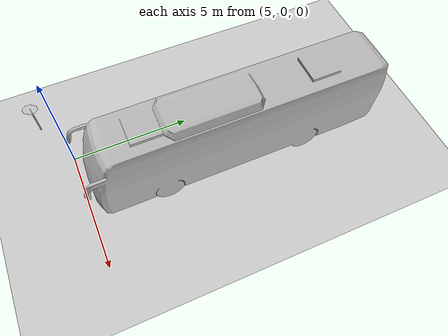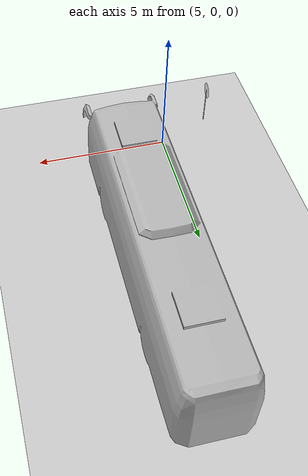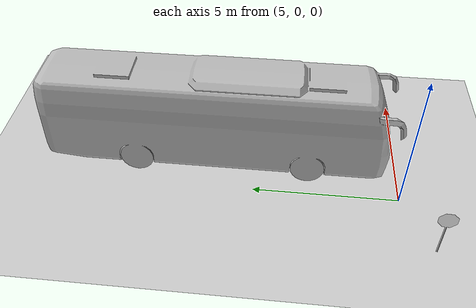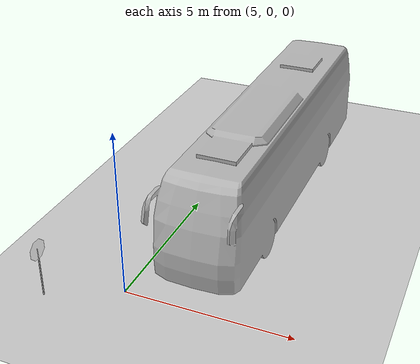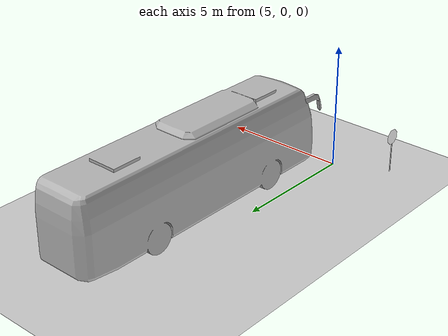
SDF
<sdf version="1.6">
 <world name="default">
  <light name="sun" type="directional">
   <pose>0 0 10 0 -0 0</pose>
   <diffuse>0.8 0.8 0.8 1</diffuse>
   <specular>0.2 0.2 0.2 1</specular>
   <attenuation>
    <range>1000</range>
    <constant>0.9</constant>
    <linear>0.01</linear>
    <quadratic>0.001</quadratic>
   </attenuation>
   <direction>-0.5 0.1 -0.9</direction>
  </light>
  <model name="ground_plane">
   <static>1</static>
   <link name="link">
    <collision name="collision">
     <geometry><plane><normal>0 0 1</normal><size>100 100</size></plane></geometry>
     <surface><friction><ode><mu>100</mu><mu2>50</mu2></ode></friction></surface>
    </collision>
    <visual name="visual">
     <cast_shadows>0</cast_shadows>
     <geometry><plane><normal>0 0 1</normal><size>100 100</size></plane></geometry>
     <material>
      <script><uri>file://media/materials/scripts/gazebo.material</uri><name>Gazebo/Grey</name></script>
     </material>
    </visual>
   </link>
  </model>
  <gravity>0 0 -9.8</gravity>
  <magnetic_field>6e-06 2.3e-05 -4.2e-05</magnetic_field>
  <atmosphere type="adiabatic"/>
  <physics name="default_physics" default="0" type="ode">
   <max_step_size>0.001</max_step_size>
   <real_time_factor>1</real_time_factor>
   <real_time_update_rate>1000</real_time_update_rate>
  </physics>
  <scene><ambient>0.4 0.4 0.4 1</ambient><background>0.7 0.7 0.7 1</background><shadows>1</shadows></scene>
  <audio><device>default</device></audio>
  <spherical_coordinates>
   <surface_model>EARTH_WGS84</surface_model>
   <latitude_deg>0</latitude_deg>
   <longitude_deg>0</longitude_deg>
   <elevation>0</elevation>
   <heading_deg>0</heading_deg>
  </spherical_coordinates>
  <model name="bus">
   <static>1</static>
   <link name="link">
    <collision name="collision">
     <geometry><mesh><scale>0.01 0.01 0.01</scale><uri>model://bus/meshes/bus.obj</uri></mesh></geometry>
    </collision>
    <visual name="visual">
     <geometry><mesh><scale>0.01 0.01 0.01</scale><uri>model://bus/meshes/bus.obj</uri></mesh></geometry>
    </visual>
   </link>
   <pose>6.87599 6.41461 0 0 -0 0</pose>
  </model>
  <model name="Stop Sign">
   <static>1</static>
   <link name="link">
    <collision name="collision">
     <geometry><mesh><uri>model://stop_sign/meshes/stop_sign.dae</uri></mesh></geometry>
    </collision>
    <visual name="visual">
     <geometry><mesh><uri>model://stop_sign/meshes/stop_sign.dae</uri></mesh></geometry>
     <material>
      <script>
       <uri>model://stop_sign/materials/scripts</uri>
       <uri>model://stop_sign/materials/textures</uri>
       <name>StopSign/Diffuse</name>
      </script>
     </material>
    </visual>
   </link>
   <pose>2.96669 -0.971579 0 0 0 -1.61339</pose>
  </model>
 </world>
</sdf>
